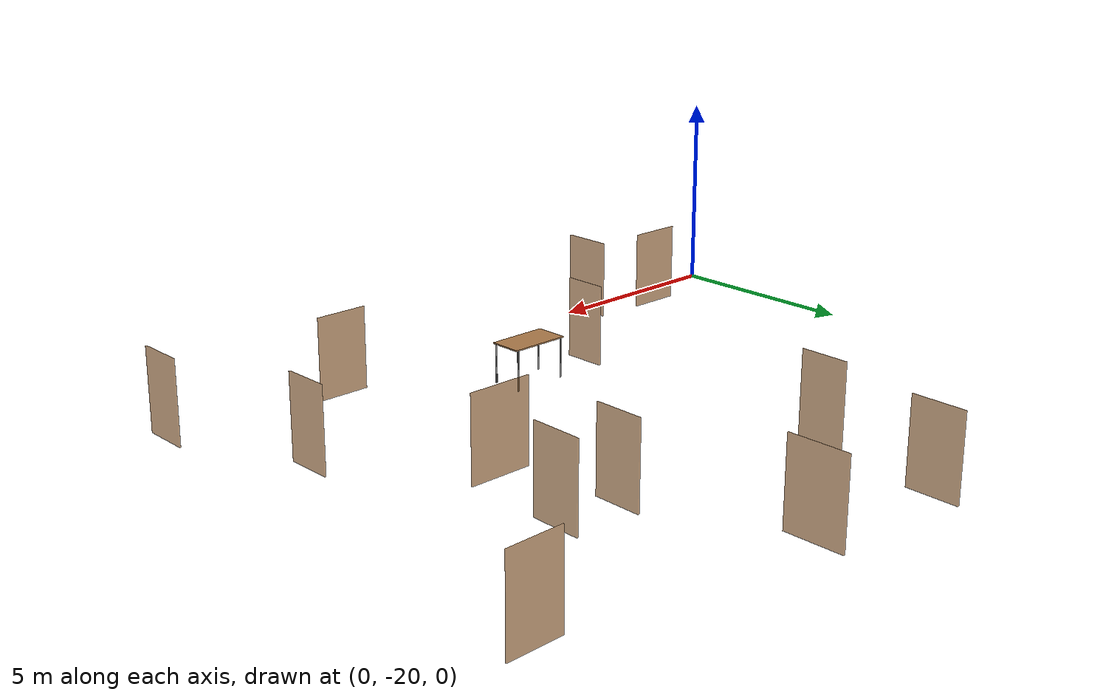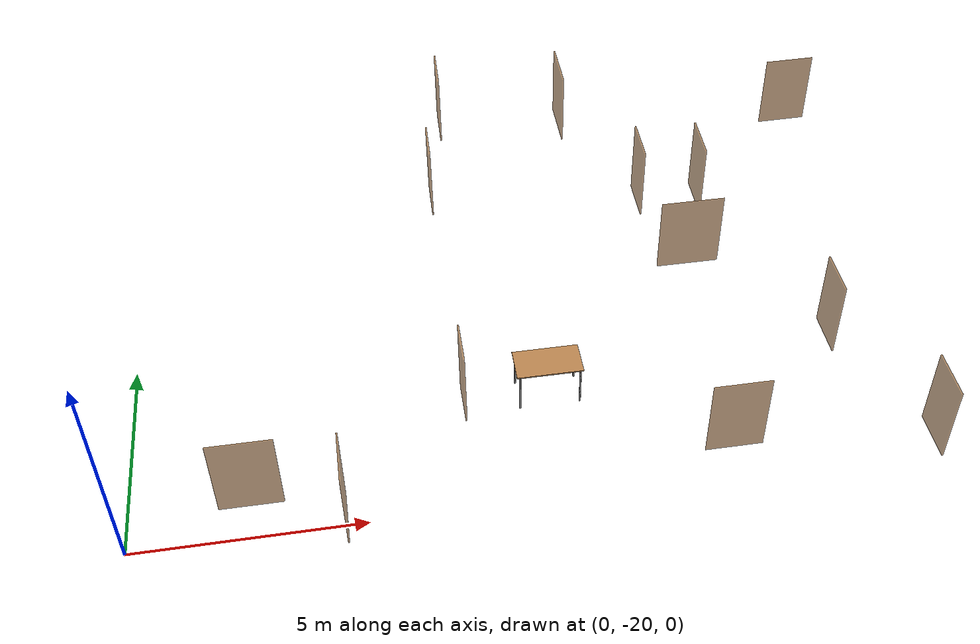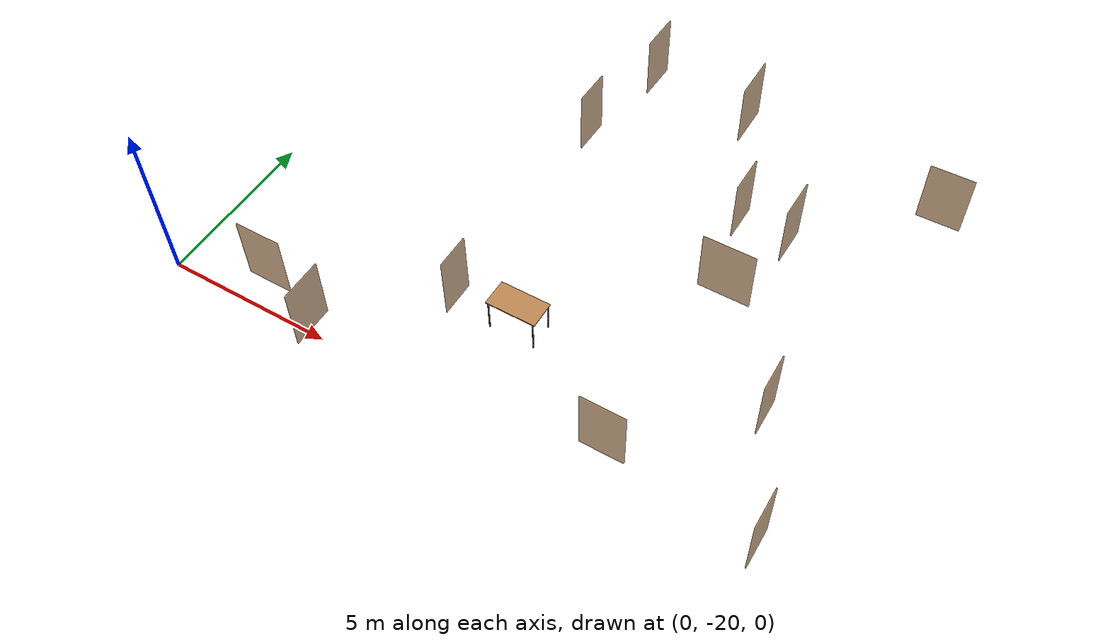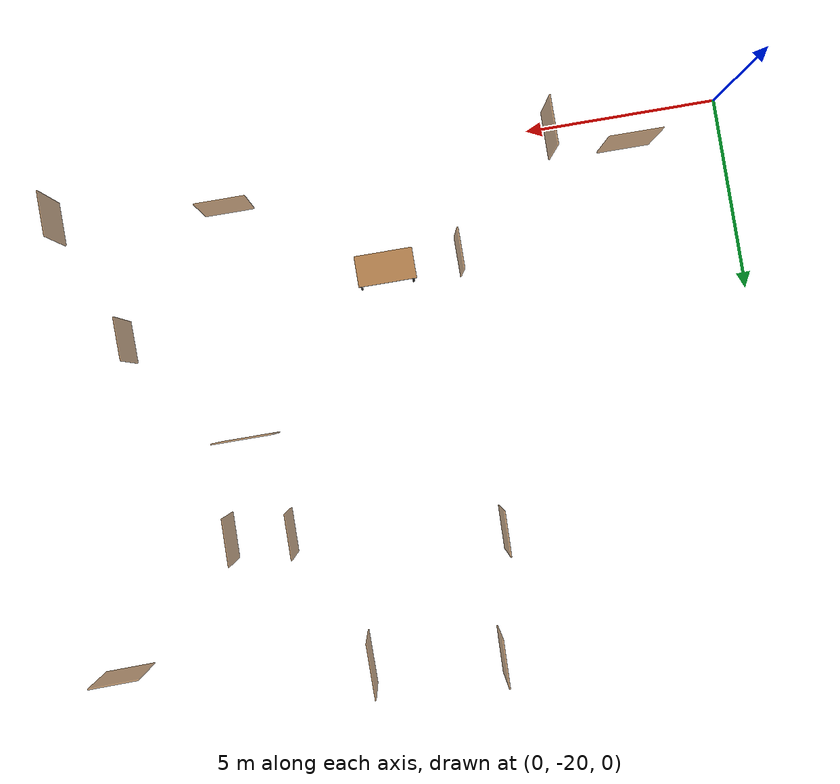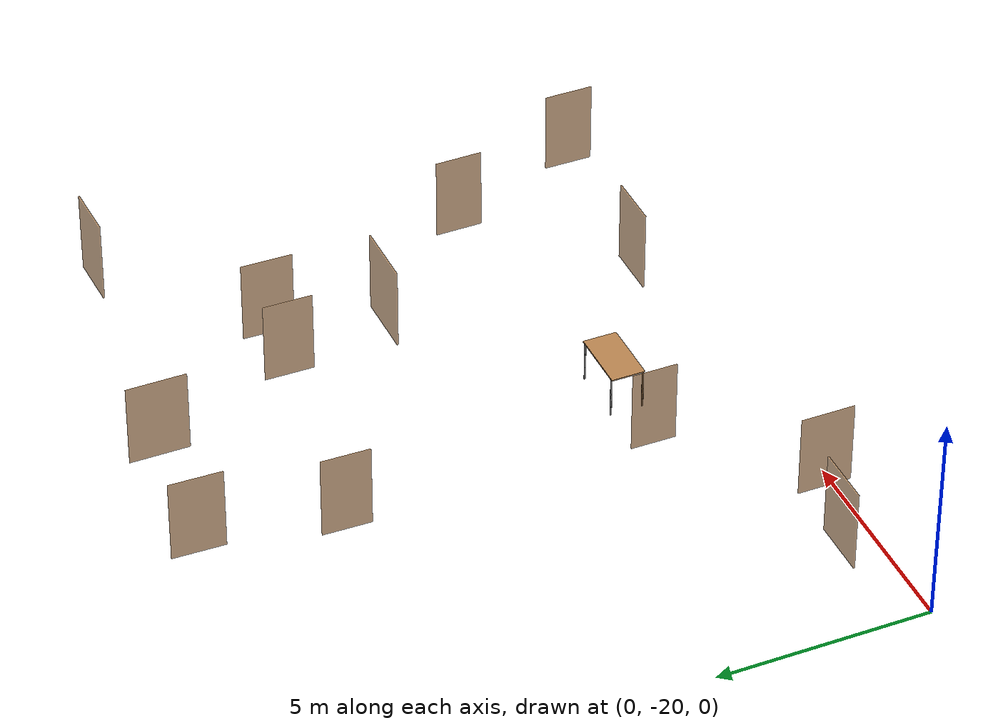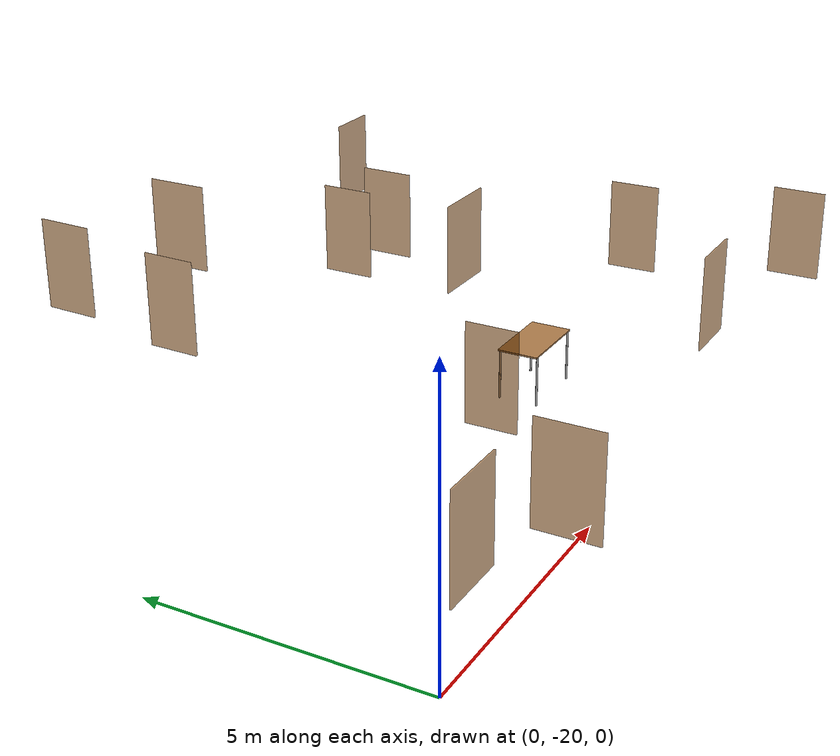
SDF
<sdf version="1.7">
 <world name="world">
  <scene><ambient>0.8 0.8 0.8 1.0</ambient><background>0 0 0</background><grid>false</grid></scene>
  <include><uri>model://sun</uri></include>
  <model name="door_kitchen">
   <pose>16.080245142462395 -16.25646027308161 0.0 0 0 -1.562457432607192</pose>
   <link name="right">
    <pose>0 0 1.01 0 0 0</pose>
    <visual name="right_visual">
     <geometry><box><size>1.109589746622178 0.03 2.0</size></box></geometry>
     <material><ambient>0.5 0.25 0 0.6</ambient><diffuse>0.5 0.25 0 0.6</diffuse></material>
    </visual>
    <collision name="right_collision">
     <geometry><box><size>1.109589746622178 0.03 2.0</size></box></geometry>
     <surface><contact><collide_bitmask>0x02</collide_bitmask></contact></surface>
    </collision>
    <inertial>
     <mass>50.0</mass>
     <inertia><ixx>16.670416666666668</ixx><iyy>21.79662252420446</iyy><izz>5.133705857537789</izz></inertia>
    </inertial>
   </link>
   <joint name="right_joint" type="revolute">
    <parent>world</parent>
    <child>right</child>
    <axis><xyz>0 0 -1</xyz><limit><lower>0</lower><upper>1.57</upper></limit></axis>
    <pose>0.559794873311089 0 0 0 0 0</pose>
   </joint>
  </model>
  <model name="door_bathroom1">
   <pose>17.428003476694457 -19.630355640118523 0.0 0 0 1.5695099001705253</pose>
   <link name="right">
    <pose>0 0 1.01 0 0 0</pose>
    <visual name="right_visual">
     <geometry><box><size>1.145627315076036 0.03 2.0</size></box></geometry>
     <material><ambient>0.5 0.25 0 0.6</ambient><diffuse>0.5 0.25 0 0.6</diffuse></material>
    </visual>
    <collision name="right_collision">
     <geometry><box><size>1.145627315076036 0.03 2.0</size></box></geometry>
     <surface><contact><collide_bitmask>0x02</collide_bitmask></contact></surface>
    </collision>
    <inertial>
     <mass>50.0</mass>
     <inertia><ixx>16.670416666666668</ixx><iyy>22.13525810436803</iyy><izz>5.472341437701363</izz></inertia>
    </inertial>
   </link>
   <joint name="right_joint" type="revolute">
    <parent>world</parent>
    <child>right</child>
    <axis><xyz>0 0 -1</xyz><limit><lower>0</lower><upper>1.57</upper></limit></axis>
    <pose>0.577813657538018 0 0 0 0 0</pose>
   </joint>
  </model>
  <model name="door_warehouse1">
   <pose>7.325118281252149 -17.05888332344462 0.0 0 0 1.5707963267948966</pose>
   <link name="right">
    <pose>0 0 1.01 0 0 0</pose>
    <visual name="right_visual">
     <geometry><box><size>1.0544860697012142 0.03 2.0</size></box></geometry>
     <material><ambient>0.5 0.25 0 0.6</ambient><diffuse>0.5 0.25 0 0.6</diffuse></material>
    </visual>
    <collision name="right_collision">
     <geometry><box><size>1.0544860697012142 0.03 2.0</size></box></geometry>
     <surface><contact><collide_bitmask>0x02</collide_bitmask></contact></surface>
    </collision>
    <inertial>
     <mass>50.0</mass>
     <inertia><ixx>16.670416666666668</ixx><iyy>21.299753629974642</iyy><izz>4.6368369633079745</izz></inertia>
    </inertial>
   </link>
   <joint name="right_joint" type="revolute">
    <parent>world</parent>
    <child>right</child>
    <axis><xyz>0 0 -1</xyz><limit><lower>0</lower><upper>1.57</upper></limit></axis>
    <pose>0.5322430348506071 0 0 0 0 0</pose>
   </joint>
  </model>
  <model name="door_warehouse2">
   <pose>7.365881657643422 -9.8875816241503 0.0 0 0 -1.5939307383721164</pose>
   <link name="right">
    <pose>0 0 1.01 0 0 0</pose>
    <visual name="right_visual">
     <geometry><box><size>1.145935674024048 0.03 2.0</size></box></geometry>
     <material><ambient>0.5 0.25 0 0.6</ambient><diffuse>0.5 0.25 0 0.6</diffuse></material>
    </visual>
    <collision name="right_collision">
     <geometry><box><size>1.145935674024048 0.03 2.0</size></box></geometry>
     <surface><contact><collide_bitmask>0x02</collide_bitmask></contact></surface>
    </collision>
    <inertial>
     <mass>50.0</mass>
     <inertia><ixx>16.670416666666668</ixx><iyy>22.13820237083729</iyy><izz>5.475285704170623</izz></inertia>
    </inertial>
   </link>
   <joint name="right_joint" type="revolute">
    <parent>world</parent>
    <child>right</child>
    <axis><xyz>0 0 -1</xyz><limit><lower>0</lower><upper>1.57</upper></limit></axis>
    <pose>0.577967837012024 0 0 0 0 0</pose>
   </joint>
  </model>
  <model name="door_mini_rrl">
   <pose>11.262049732117953 -7.104056498998965 0.0 0 0 1.5709644434662853</pose>
   <link name="right">
    <pose>0 0 1.01 0 0 0</pose>
    <visual name="right_visual">
     <geometry><box><size>1.4048548915879961 0.03 2.0</size></box></geometry>
     <material><ambient>0.5 0.25 0 0.6</ambient><diffuse>0.5 0.25 0 0.6</diffuse></material>
    </visual>
    <collision name="right_collision">
     <geometry><box><size>1.4048548915879961 0.03 2.0</size></box></geometry>
     <surface><contact><collide_bitmask>0x02</collide_bitmask></contact></surface>
    </collision>
    <inertial>
     <mass>50.0</mass>
     <inertia><ixx>16.670416666666668</ixx><iyy>24.89007194341134</iyy><izz>8.227155276744668</izz></inertia>
    </inertial>
   </link>
   <joint name="right_joint" type="revolute">
    <parent>world</parent>
    <child>right</child>
    <axis><xyz>0 0 -1</xyz><limit><lower>0</lower><upper>1.57</upper></limit></axis>
    <pose>0.7074274457939981 0 0 0 0 0</pose>
   </joint>
  </model>
  <model name="door_office">
   <pose>7.937768141452234 -6.737632100278285 0.0 0 0 1.5431487698929705</pose>
   <link name="right">
    <pose>0 0 1.01 0 0 0</pose>
    <visual name="right_visual">
     <geometry><box><size>1.23763989223551 0.03 2.0</size></box></geometry>
     <material><ambient>0.5 0.25 0 0.6</ambient><diffuse>0.5 0.25 0 0.6</diffuse></material>
    </visual>
    <collision name="right_collision">
     <geometry><box><size>1.23763989223551 0.03 2.0</size></box></geometry>
     <surface><contact><collide_bitmask>0x02</collide_bitmask></contact></surface>
    </collision>
    <inertial>
     <mass>50.0</mass>
     <inertia><ixx>16.670416666666668</ixx><iyy>23.048968761886353</iyy><izz>6.3860520952196875</izz></inertia>
    </inertial>
   </link>
   <joint name="right_joint" type="revolute">
    <parent>world</parent>
    <child>right</child>
    <axis><xyz>0 0 -1</xyz><limit><lower>0</lower><upper>1.57</upper></limit></axis>
    <pose>0.623819946117755 0 0 0 0 0</pose>
   </joint>
  </model>
  <model name="door_recordings">
   <pose>17.571492940198677 -7.8671334262709545 0.0 0 0 -3.123409491376528</pose>
   <link name="right">
    <pose>0 0 1.01 0 0 0</pose>
    <visual name="right_visual">
     <geometry><box><size>1.2818565879323982 0.03 2.0</size></box></geometry>
     <material><ambient>0.5 0.25 0 0.6</ambient><diffuse>0.5 0.25 0 0.6</diffuse></material>
    </visual>
    <collision name="right_collision">
     <geometry><box><size>1.2818565879323982 0.03 2.0</size></box></geometry>
     <surface><contact><collide_bitmask>0x02</collide_bitmask></contact></surface>
    </collision>
    <inertial>
     <mass>50.0</mass>
     <inertia><ixx>16.670416666666668</ixx><iyy>23.513151300107044</iyy><izz>6.850234633440376</izz></inertia>
    </inertial>
   </link>
   <joint name="right_joint" type="revolute">
    <parent>world</parent>
    <child>right</child>
    <axis><xyz>0 0 -1</xyz><limit><lower>0</lower><upper>1.57</upper></limit></axis>
    <pose>0.6459282939661991 0 0 0 0 0</pose>
   </joint>
  </model>
  <model name="door_closet">
   <pose>2.567656634711677 -19.15182947860628 0.0 0 0 3.141165260570925</pose>
   <link name="right">
    <pose>0 0 1.01 0 0 0</pose>
    <visual name="right_visual">
     <geometry><box><size>1.3813464334366092 0.03 2.0</size></box></geometry>
     <material><ambient>0.5 0.25 0 0.6</ambient><diffuse>0.5 0.25 0 0.6</diffuse></material>
    </visual>
    <collision name="right_collision">
     <geometry><box><size>1.3813464334366092 0.03 2.0</size></box></geometry>
     <surface><contact><collide_bitmask>0x02</collide_bitmask></contact></surface>
    </collision>
    <inertial>
     <mass>50.0</mass>
     <inertia><ixx>16.670416666666668</ixx><iyy>24.61715820486684</iyy><izz>7.95424153820017</izz></inertia>
    </inertial>
   </link>
   <joint name="right_joint" type="revolute">
    <parent>world</parent>
    <child>right</child>
    <axis><xyz>0 0 -1</xyz><limit><lower>0</lower><upper>1.57</upper></limit></axis>
    <pose>0.6956732167183046 0 0 0 0 0</pose>
   </joint>
  </model>
  <model name="door_rrl">
   <pose>12.727222051301975 -10.716377478932754 0.0 0 0 1.5616494156602039</pose>
   <link name="right">
    <pose>0 0 1.01 0 0 0</pose>
    <visual name="right_visual">
     <geometry><box><size>1.1623851166268635 0.03 2.0</size></box></geometry>
     <material><ambient>0.5 0.25 0 0.6</ambient><diffuse>0.5 0.25 0 0.6</diffuse></material>
    </visual>
    <collision name="right_collision">
     <geometry><box><size>1.1623851166268635 0.03 2.0</size></box></geometry>
     <surface><contact><collide_bitmask>0x02</collide_bitmask></contact></surface>
    </collision>
    <inertial>
     <mass>50.0</mass>
     <inertia><ixx>16.670416666666668</ixx><iyy>22.296413163981864</iyy><izz>5.633496497315196</izz></inertia>
    </inertial>
   </link>
   <joint name="right_joint" type="revolute">
    <parent>world</parent>
    <child>right</child>
    <axis><xyz>0 0 -1</xyz><limit><lower>0</lower><upper>1.57</upper></limit></axis>
    <pose>0.5861925583134318 0 0 0 0 0</pose>
   </joint>
  </model>
  <model name="door_cafeteria">
   <pose>13.459129316830579 -13.296819125933453 0.0 0 0 0.00034506554875947566</pose>
   <link name="right">
    <pose>0 0 1.01 0 0 0</pose>
    <visual name="right_visual">
     <geometry><box><size>1.5409707459290378 0.03 2.0</size></box></geometry>
     <material><ambient>0.5 0.25 0 0.6</ambient><diffuse>0.5 0.25 0 0.6</diffuse></material>
    </visual>
    <collision name="right_collision">
     <geometry><box><size>1.5409707459290378 0.03 2.0</size></box></geometry>
     <surface><contact><collide_bitmask>0x02</collide_bitmask></contact></surface>
    </collision>
    <inertial>
     <mass>50.0</mass>
     <inertia><ixx>16.670416666666668</ixx><iyy>26.56079516587123</iyy><izz>9.897878499204564</izz></inertia>
    </inertial>
   </link>
   <joint name="right_joint" type="revolute">
    <parent>world</parent>
    <child>right</child>
    <axis><xyz>0 0 -1</xyz><limit><lower>0</lower><upper>1.57</upper></limit></axis>
    <pose>0.7754853729645189 0 0 0 0 0</pose>
   </joint>
  </model>
  <model name="door_bathroom2">
   <pose>4.527856701036794 -19.8008224706388 0.0 0 0 -1.5707963267948966</pose>
   <link name="right">
    <pose>0 0 1.01 0 0 0</pose>
    <visual name="right_visual">
     <geometry><box><size>1.2545269131443122 0.03 2.0</size></box></geometry>
     <material><ambient>0.5 0.25 0 0.6</ambient><diffuse>0.5 0.25 0 0.6</diffuse></material>
    </visual>
    <collision name="right_collision">
     <geometry><box><size>1.2545269131443122 0.03 2.0</size></box></geometry>
     <surface><contact><collide_bitmask>0x02</collide_bitmask></contact></surface>
    </collision>
    <inertial>
     <mass>50.0</mass>
     <inertia><ixx>16.670416666666668</ixx><iyy>23.224324065847487</iyy><izz>6.561407399180819</izz></inertia>
    </inertial>
   </link>
   <joint name="right_joint" type="revolute">
    <parent>world</parent>
    <child>right</child>
    <axis><xyz>0 0 -1</xyz><limit><lower>0</lower><upper>1.57</upper></limit></axis>
    <pose>0.6322634565721561 0 0 0 0 0</pose>
   </joint>
  </model>
  <model name="door_servers">
   <pose>14.277994487649003 -10.834891569593305 0.0 0 0 -1.589951878239416</pose>
   <link name="right">
    <pose>0 0 1.01 0 0 0</pose>
    <visual name="right_visual">
     <geometry><box><size>1.2142160836735563 0.03 2.0</size></box></geometry>
     <material><ambient>0.5 0.25 0 0.6</ambient><diffuse>0.5 0.25 0 0.6</diffuse></material>
    </visual>
    <collision name="right_collision">
     <geometry><box><size>1.2142160836735563 0.03 2.0</size></box></geometry>
     <surface><contact><collide_bitmask>0x02</collide_bitmask></contact></surface>
    </collision>
    <inertial>
     <mass>50.0</mass>
     <inertia><ixx>16.670416666666668</ixx><iyy>22.809669574381456</iyy><izz>6.146752907714786</izz></inertia>
    </inertial>
   </link>
   <joint name="right_joint" type="revolute">
    <parent>world</parent>
    <child>right</child>
    <axis><xyz>0 0 -1</xyz><limit><lower>0</lower><upper>1.57</upper></limit></axis>
    <pose>0.6121080418367781 0 0 0 0 0</pose>
   </joint>
  </model>
  <model name="door_entrance">
   <pose>13.026440893176261 -19.214922027623263 0.0 0 0 0.0</pose>
   <link name="right">
    <pose>0 0 1.01 0 0 0</pose>
    <visual name="right_visual">
     <geometry><box><size>1.2890365354624291 0.03 2.0</size></box></geometry>
     <material><ambient>0.5 0.25 0 0.6</ambient><diffuse>0.5 0.25 0 0.6</diffuse></material>
    </visual>
    <collision name="right_collision">
     <geometry><box><size>1.2890365354624291 0.03 2.0</size></box></geometry>
     <surface><contact><collide_bitmask>0x02</collide_bitmask></contact></surface>
    </collision>
    <inertial>
     <mass>50.0</mass>
     <inertia><ixx>16.670416666666668</ixx><iyy>23.590063290654097</iyy><izz>6.927146623987427</izz></inertia>
    </inertial>
   </link>
   <joint name="right_joint" type="revolute">
    <parent>world</parent>
    <child>right</child>
    <axis><xyz>0 0 -1</xyz><limit><lower>0</lower><upper>1.57</upper></limit></axis>
    <pose>0.6495182677312146 0 0 0 0 0</pose>
   </joint>
  </model>
  <plugin name="gazebo_ros_state" filename="libgazebo_ros_state.so">
   <ros><namespace>/gazebo</namespace></ros>
   <update_rate>5.0</update_rate>
  </plugin>
  <model name="high_table">
   <static>1</static>
   <include><uri>model://table</uri></include>
   <pose>9.25 -17.0 0 0 0 0</pose>
  </model>
 </world>
</sdf>

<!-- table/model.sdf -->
<sdf version="1.5">
  <model name="table">
    <static>true</static>
    <link name="link">
      <collision name="surface">
        <pose>0 0 1.0 0 0 0</pose>
        <geometry>
          <box>
            <size>1.5 0.8 0.03</size>
          </box>
        </geometry>
        <surface>
          <friction>
            <ode>
              <mu>0.6</mu>
              <mu2>0.6</mu2>
            </ode>
          </friction>
        </surface>
      </collision>
      <visual name="visual1">
        <pose>0 0 1.0 0 0 0</pose>
        <geometry>
          <box>
            <size>1.5 0.8 0.03</size>
          </box>
        </geometry>
        <material>
          <script>
            <uri>file://media/materials/scripts/gazebo.material</uri>
            <name>Gazebo/Wood</name>
          </script>
        </material>
      </visual>
      <collision name="front_left_leg_c">
        <pose>0.68 0.38 0.5 0 0 0</pose>
        <geometry>
          <cylinder>
            <radius>0.02</radius>
            <length>1.0</length>
          </cylinder>
        </geometry>
      </collision>
      <visual name="front_left_leg_v">
        <pose>0.68 0.38 0.5 0 0 0</pose>
        <geometry>
          <cylinder>
            <radius>0.02</radius>
            <length>1.0</length>
          </cylinder>
        </geometry>
        <material>
          <script>
            <uri>file://media/materials/scripts/gazebo.material</uri>
            <name>Gazebo/Grey</name>
          </script>
        </material>
      </visual>
      <collision name="front_right_leg_c">
        <pose>0.68 -0.38 0.5 0 0 0</pose>
        <geometry>
          <cylinder>
            <radius>0.02</radius>
            <length>1.0</length>
          </cylinder>
        </geometry>
      </collision>
      <visual name="front_right_leg_v">
        <pose>0.68 -0.38 0.5 0 0 0</pose>
        <geometry>
          <cylinder>
            <radius>0.02</radius>
            <length>1.0</length>
          </cylinder>
        </geometry>
        <material>
          <script>
            <uri>file://media/materials/scripts/gazebo.material</uri>
            <name>Gazebo/Grey</name>
          </script>
        </material>
      </visual>
      <collision name="back_right_leg_c">
        <pose>-0.68 -0.38 0.5 0 0 0</pose>
        <geometry>
          <cylinder>
            <radius>0.02</radius>
            <length>1.0</length>
          </cylinder>
        </geometry>
      </collision>
      <visual name="back_right_leg_v">
        <pose>-0.68 -0.38 0.5 0 0 0</pose>
        <geometry>
          <cylinder>
            <radius>0.02</radius>
            <length>1.0</length>
          </cylinder>
        </geometry>
        <material>
          <script>
            <uri>file://media/materials/scripts/gazebo.material</uri>
            <name>Gazebo/Grey</name>
          </script>
        </material>
      </visual>
      <collision name="back_left_leg_c">
        <pose>-0.68 0.38 0.5 0 0 0</pose>
        <geometry>
          <cylinder>
            <radius>0.02</radius>
            <length>1.0</length>
          </cylinder>
        </geometry>
      </collision>
      <visual name="back_left_leg_v">
        <pose>-0.68 0.38 0.5 0 0 0</pose>
        <geometry>
          <cylinder>
            <radius>0.02</radius>
            <length>1.0</length>
          </cylinder>
        </geometry>
        <material>
          <script>
            <uri>file://media/materials/scripts/gazebo.material</uri>
            <name>Gazebo/Grey</name>
          </script>
        </material>
      </visual>
    </link>
  </model>
</sdf>
